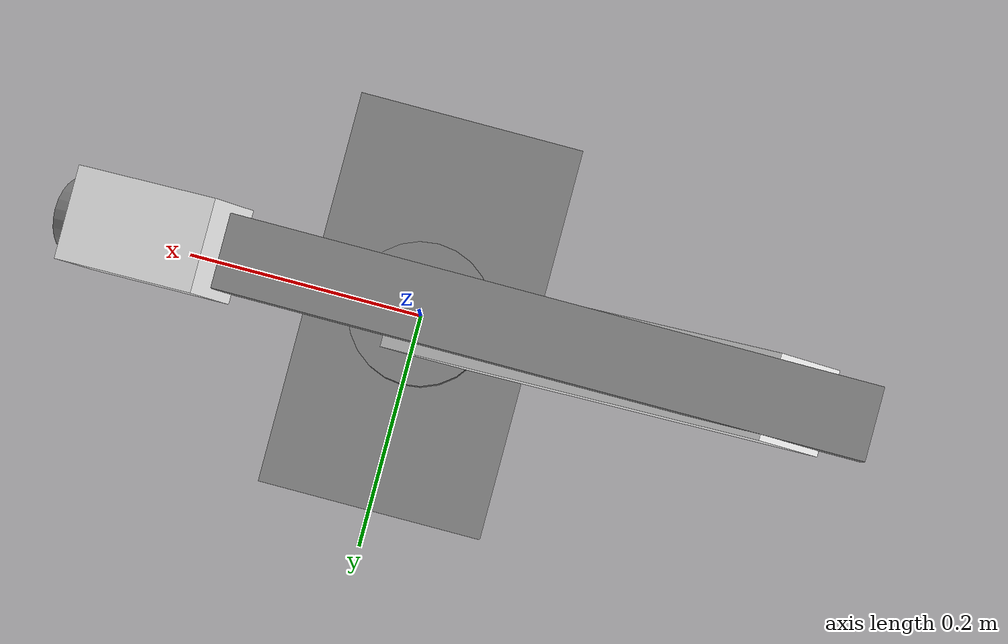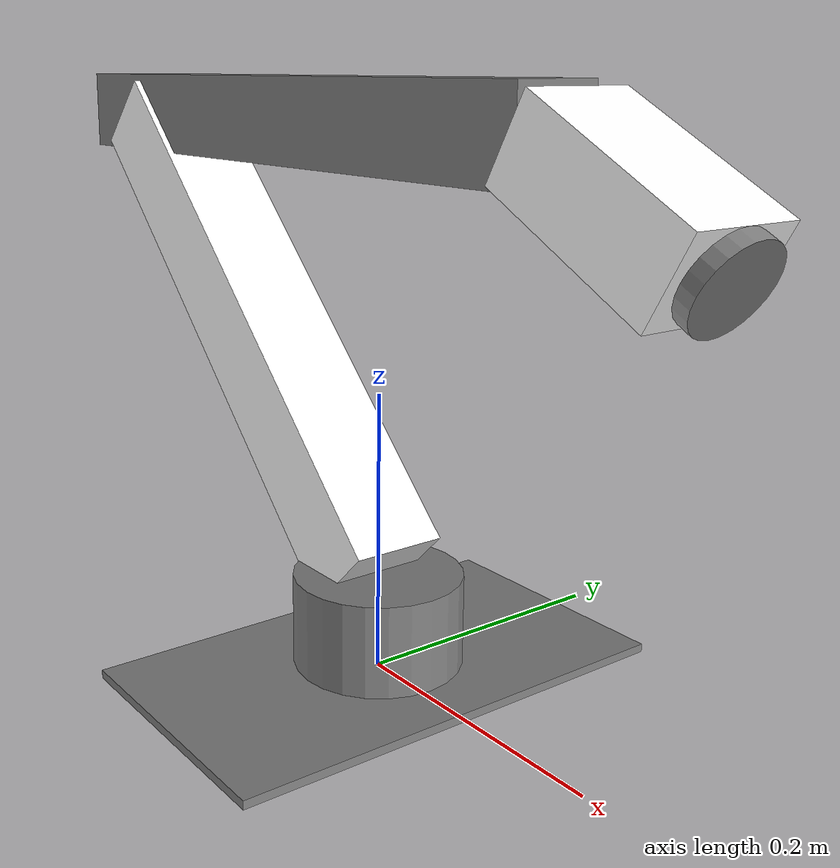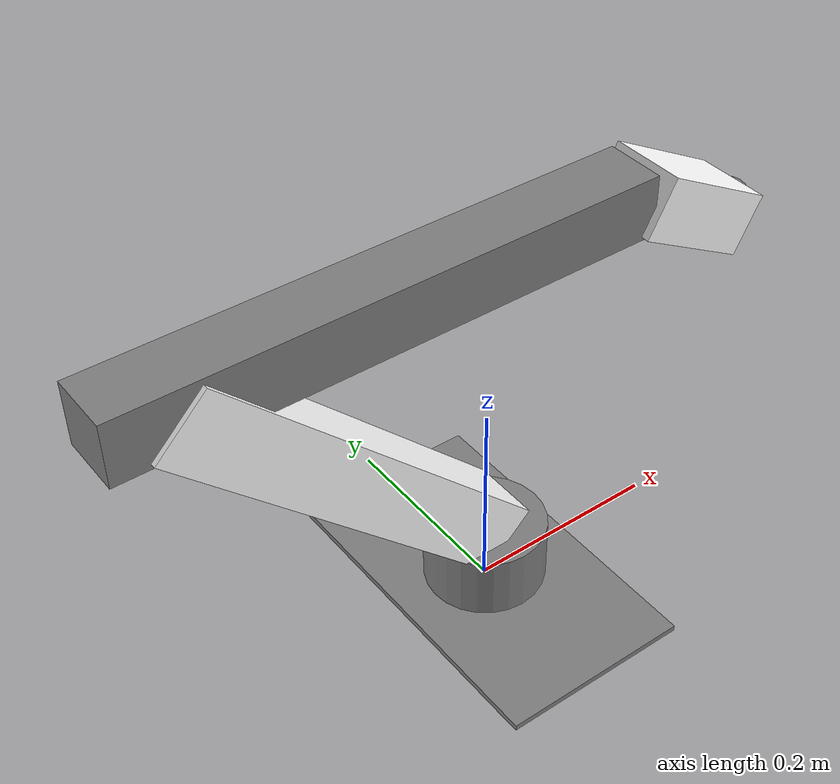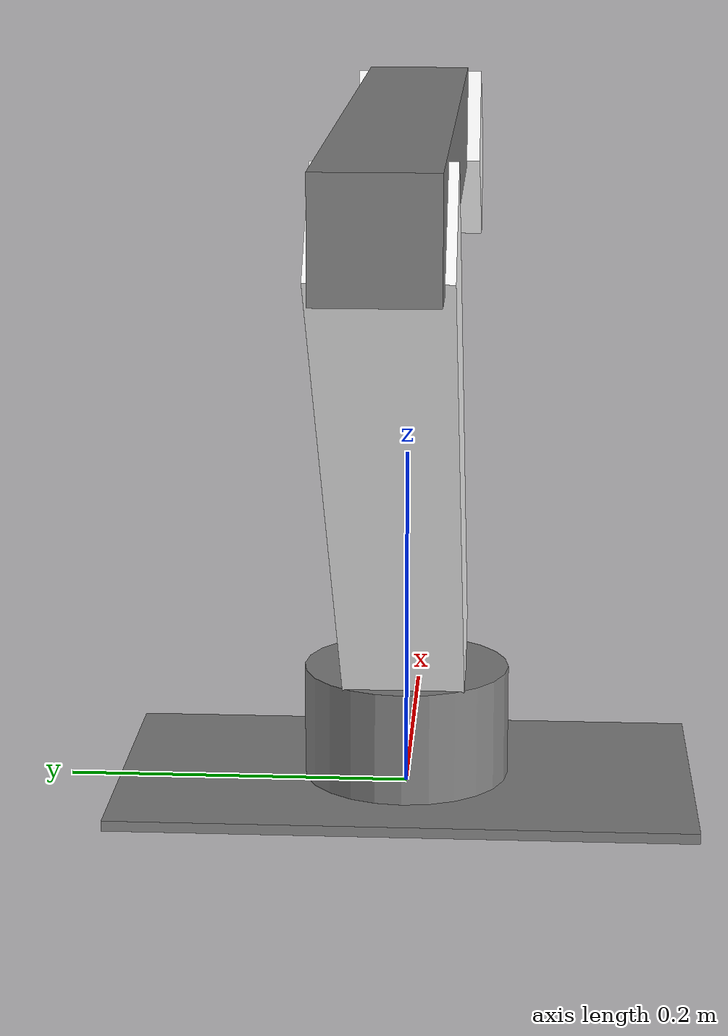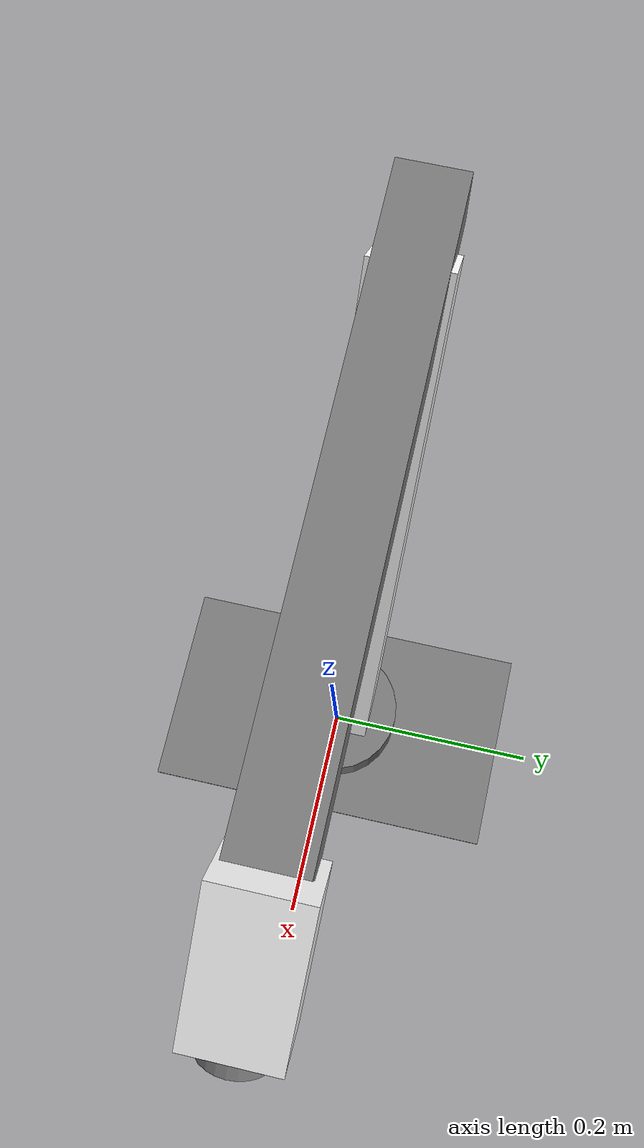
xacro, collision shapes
<?xml version="1.0" encoding="utf-8"?>
<robot xmlns:xacro="http://www.ros.org/wiki/xacro" name="manipulator">
  <xacro:property name="package" value="voodoo" />
  <xacro:property name="inertial" value="${xacro.load_yaml('manipulator_inertial.yaml')}" />
  <xacro:include filename="materials.urdf.xacro" />

  <xacro:property name="base_length" value="0.006" />
  <xacro:property name="cyl_length" value="0.0655" />
  <xacro:property name="arm1_length" value="0.43498" />
  <xacro:property name="arm2_length" value="0.5236" />
  <xacro:property name="arm2_lever" value="0.0586" />
  <xacro:property name="arm3_length" value="0.129" />
  <xacro:property name="tool_length" value="0.011" />
  <xacro:property name="base_size_x" value="0.2" />

  <xacro:property name="arm1_home_angle" value="-0.7853981633974483"/>
  <xacro:property name="arm2_home_angle" value="2.356194490192345"/>
  <xacro:property name="arm3_home_angle" value="0.5"/>

  <link name="root_link">
  </link>
  <joint name="root_base" type="fixed">
    <parent link="root_link"/>
    <child link="base_link"/>
  </joint>

  <link name="base_link">
    <visual>
      <origin xyz="0 0 0" rpy="0 0 0" />
      <geometry>
        <mesh filename="package://${package}/meshes/manipulator/base.stl" scale="0.001 0.001 0.001"/>
      </geometry>
      <material name="grey">
        <color rgba=".5 .5 .5 1" />
      </material>
    </visual>
    <inertial>
      <mass value="${inertial['base_mass']}"/>
        <inertia ixx="${inertial['base_inertia']['ixx']}" ixy="${inertial['base_inertia']['ixy']}" ixz="${inertial['base_inertia']['ixz']}" iyy="${inertial['base_inertia']['iyy']}" iyz="${inertial['base_inertia']['iyz']}" izz="${inertial['base_inertia']['izz']}"/>
    </inertial>
    <collision>
      <origin xyz="0 0 ${base_length / 2}" rpy="0 0 0" />
      <geometry>
        <box size="0.192 0.337 ${base_length}" />
      </geometry>
    </collision>
  </link>
  <gazebo reference="base_link">
      <kinematic> true </kinematic>
      <material>
        Gazebo/Grey
      </material>
  </gazebo>

  <link name="cylinder">
    <visual>
      <origin xyz="0 0 0" rpy="0 0 0" />
      <geometry>
        <mesh filename="package://${package}/meshes/manipulator/cyl.stl" scale="0.001 0.001 0.001"/>
      </geometry>
      <material name="grey">
      </material>
    </visual>
    <inertial>
      <mass value="${inertial['cyl_mass']}"/>
        <inertia ixx="${inertial['cyl_inertia']['ixx']}" ixy="${inertial['cyl_inertia']['ixy']}" ixz="${inertial['cyl_inertia']['ixz']}" iyy="${inertial['cyl_inertia']['iyy']}" iyz="${inertial['cyl_inertia']['iyz']}" izz="${inertial['cyl_inertia']['izz']}"/>
    </inertial>
    <collision>
      <origin xyz="0 0 ${cyl_length/2}" rpy="0 0 0" />
      <geometry>
        <cylinder length="${cyl_length}" radius="0.06" />
      </geometry>
    </collision>
  </link>
  <gazebo reference="cylinder">
      <material>
        Gazebo/Grey
      </material>
  </gazebo>

  <joint name="base_cyl" type="continuous">
    <parent link="base_link"/>
    <child link="cylinder"/>
    <origin xyz="0 0 ${base_length}"/>
    <axis xyz="0 0 1"/>
  </joint>
  <transmission name="trans_base_cyl">
    <type>transmission_interface/SimpleTransmission</type>
    <joint name="base_cyl">
        <hardwareInterface>hardware_interface/EffortJointInterface</hardwareInterface>
    </joint>
    <actuator name="motor_base_cyl">
        <hardwareInterface>hardware_interface/EffortJointInterface</hardwareInterface>
        <mechanicalReduction>150</mechanicalReduction>
    </actuator>
  </transmission>

  <link name="arm1">
    <visual>
      <origin xyz="0 0 0" rpy="0 0 0" />
      <geometry>
        <mesh filename="package://${package}/meshes/manipulator/arm1.stl" scale="0.001 0.001 0.001"/>
      </geometry>
      <material name="white">
        <color rgba="1 1 1 1" />
      </material>
    </visual>
    <inertial>
        <mass value="${inertial['arm1_mass']}"/>
        <inertia ixx="${inertial['arm1_inertia']['ixx']}" ixy="${inertial['arm1_inertia']['ixy']}" ixz="${inertial['arm1_inertia']['ixz']}" iyy="${inertial['arm1_inertia']['iyy']}" iyz="${inertial['arm1_inertia']['iyz']}" izz="${inertial['arm1_inertia']['izz']}"/>
    </inertial>
    <collision>
      <origin xyz="0 0 ${arm1_length/2}" rpy="0 0 0" />
      <geometry>
        <box size="0.07 0.07 ${arm1_length}" />
      </geometry>
    </collision>
  </link>
  <gazebo reference="arm1">
      <material>
        Gazebo/White
      </material>
  </gazebo>

  <joint name="cyl_arm1" type="revolute">
    <parent link="cylinder"/>
    <child link="arm1"/>
    <origin xyz="0 0 ${cyl_length}" rpy="0 ${arm1_home_angle} 0"/>
    <axis xyz="0 1 0"/>
    <limit
      lower="${-1.45 - arm1_home_angle}"
      upper="${1.45 - arm1_home_angle}"
      effort="10"
      velocity="5" />
  </joint>
  <transmission name="trans_cyl_arm1">
    <type>transmission_interface/SimpleTransmission</type>
    <joint name="cyl_arm1">
        <hardwareInterface>hardware_interface/EffortJointInterface</hardwareInterface>
    </joint>
    <actuator name="motor_cyl_arm1">
        <hardwareInterface>hardware_interface/EffortJointInterface</hardwareInterface>
        <mechanicalReduction>120</mechanicalReduction>
    </actuator>
  </transmission>

  <link name="arm2">
    <visual>
      <origin xyz="0 0 0" rpy="0 0 0" />
      <geometry>
        <mesh filename="package://${package}/meshes/manipulator/arm2.stl" scale="0.001 0.001 0.001"/>
      </geometry>
      <material name="grey">
      </material>
    </visual>
    <inertial>
        <mass value="${inertial['arm2_mass']}"/>
        <inertia ixx="${inertial['arm2_inertia']['ixx']}" ixy="${inertial['arm2_inertia']['ixy']}" ixz="${inertial['arm2_inertia']['ixz']}" iyy="${inertial['arm2_inertia']['iyy']}" iyz="${inertial['arm2_inertia']['iyz']}" izz="${inertial['arm2_inertia']['izz']}"/>
    </inertial>
    <collision>
      <origin xyz="0 0 ${arm2_length/2 - arm2_lever}" rpy="0 0 0" />
      <geometry>
        <box size="0.06 0.06 ${arm2_length}" />
      </geometry>
    </collision>
  </link>
  <gazebo reference="arm2">
      <material>
        Gazebo/Grey
      </material>
  </gazebo>

  <joint name="arm1_arm2" type="revolute">
    <parent link="arm1"/>
    <child link="arm2"/>
    <origin xyz="0 0 ${arm1_length}" rpy="0 ${arm2_home_angle} 0"/>
    <axis xyz="0 1 0"/>
    <limit
      lower="-1.6"
      upper="0.0"
      effort="100"
      velocity="50" />
  </joint>
  <transmission name="trans_arm1_arm2">
    <type>transmission_interface/SimpleTransmission</type>
    <joint name="arm1_arm2">
        <hardwareInterface>hardware_interface/EffortJointInterface</hardwareInterface>
    </joint>
    <actuator name="motor_arm1_arm2">
        <hardwareInterface>hardware_interface/EffortJointInterface</hardwareInterface>
        <mechanicalReduction>100</mechanicalReduction>
    </actuator>
  </transmission>

  <link name="arm3">
    <visual>
      <origin xyz="0 0 0" rpy="0 0 0" />
      <geometry>
        <mesh filename="package://${package}/meshes/manipulator/arm3.stl" scale="0.001 0.001 0.001"/>
      </geometry>
      <material name="white">
      </material>
    </visual>
    <inertial>
        <mass value="${inertial['arm3_mass']}"/>
        <inertia ixx="${inertial['arm3_inertia']['ixx']}" ixy="${inertial['arm3_inertia']['ixy']}" ixz="${inertial['arm3_inertia']['ixz']}" iyy="${inertial['arm3_inertia']['iyy']}" iyz="${inertial['arm3_inertia']['iyz']}" izz="${inertial['arm3_inertia']['izz']}"/>
    </inertial>

    <collision>
      <origin xyz="0 0 ${arm3_length/2}" rpy="0 0 0" />
      <geometry>
        <box size="0.06 0.076 ${arm3_length}" />
      </geometry>
    </collision>
  </link>
  <gazebo reference="arm3">
      <material>
        Gazebo/White
      </material>
  </gazebo>

  <joint name="arm2_arm3" type="revolute">
    <parent link="arm2"/>
    <child link="arm3"/>
    <origin xyz="0 0 ${arm2_length - arm2_lever}" rpy="0 ${arm3_home_angle} 0"/>
    <axis xyz="0 1 0"/>
    <limit
      lower="-1.57"
      upper="0"
      effort="100"
      velocity="50" />
  </joint>
  <transmission name="trans_arm2_arm3">
    <type>transmission_interface/SimpleTransmission</type>
    <joint name="arm2_arm3">
        <hardwareInterface>hardware_interface/EffortJointInterface</hardwareInterface>
    </joint>
    <actuator name="motor_arm2_arm3">
        <hardwareInterface>hardware_interface/EffortJointInterface</hardwareInterface>
        <mechanicalReduction>1</mechanicalReduction>
    </actuator>
  </transmission>

  <link name="tool">
    <visual>
      <origin xyz="0 0 0" rpy="0 0 0" />
      <geometry>
        <mesh filename="package://${package}/meshes/manipulator/tool.stl" scale="0.001 0.001 0.001"/>
      </geometry>
      <material name="grey">
      </material>
    </visual>
    <inertial>
        <mass value="${inertial['tool_mass']}"/>
        <inertia ixx="${inertial['tool_inertia']['ixx']}" ixy="${inertial['tool_inertia']['ixy']}" ixz="${inertial['tool_inertia']['ixz']}" iyy="${inertial['tool_inertia']['iyy']}" iyz="${inertial['tool_inertia']['iyz']}" izz="${inertial['tool_inertia']['izz']}"/>
    </inertial>
    <collision>
      <origin xyz="0 0 ${tool_length/2}" rpy="0 0 0" />
      <geometry>
        <cylinder length="${tool_length}" radius="0.03" />
      </geometry>
    </collision>
  </link>
  <gazebo reference="tool">
      <material>
        Gazebo/Grey
      </material>
  </gazebo>

  <joint name="arm3_tool" type="continuous">
    <parent link="arm3"/>
    <child link="tool"/>
    <origin xyz="0 0 ${arm3_length}"/>
    <axis xyz="0 0 1"/>
  </joint>
  <transmission name="trans_arm3_tool">
    <type>transmission_interface/SimpleTransmission</type>
    <joint name="arm3_tool">
        <hardwareInterface>hardware_interface/EffortJointInterface</hardwareInterface>
    </joint>
    <actuator name="motor_arm3_tool">
        <hardwareInterface>hardware_interface/EffortJointInterface</hardwareInterface>
        <mechanicalReduction>1</mechanicalReduction>
    </actuator>
  </transmission>

  <link name="fake">
  </link>
  <joint name="tool_fake" type="continuous">
    <parent link="tool"/>
    <child link="fake"/>
    <origin xyz="0 0 ${tool_length}"/>
    <axis xyz="1 0 0"/>
  </joint>

  <gazebo>
    <plugin name="gazebo_ros_control" filename="libgazebo_ros_control.so">
      <robotNamespace>manipulator</robotNamespace>
      <robotSimType>gazebo_ros_control/DefaultRobotHWSim</robotSimType>
    </plugin>
  </gazebo>
</robot>
